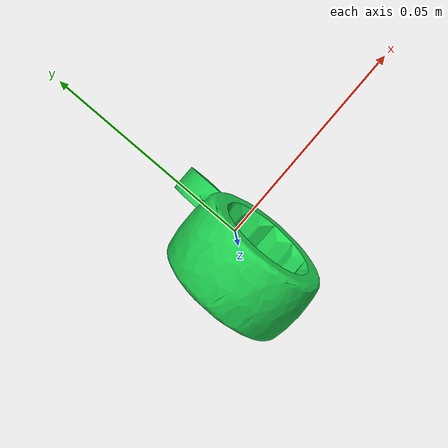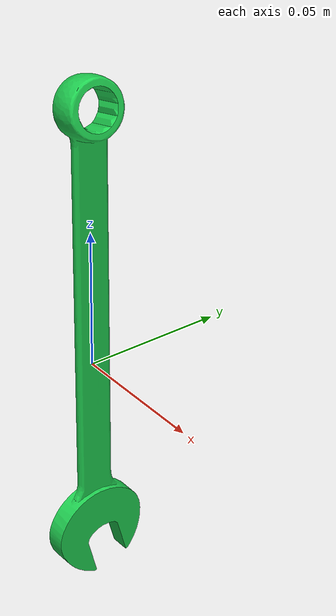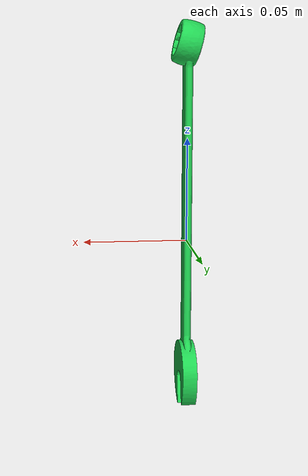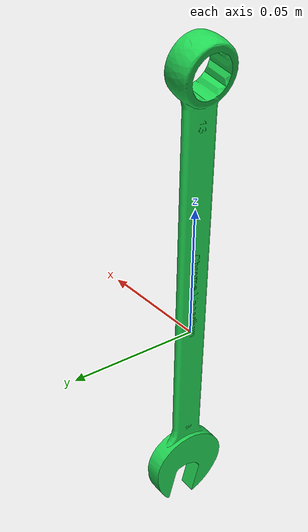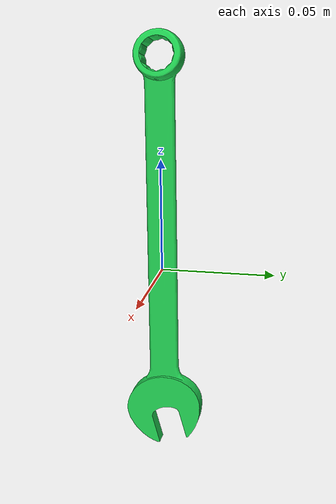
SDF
<?xml version="1.0"?>
<sdf version="1.7">
  <model name="combination_wrench_13mm_bright">
    <pose>0 0 0 0 0 0</pose>
    <static>false</static>
    <link name="link">
      <!-- link frame = tool CoM; Z = long axis (+ toward tool end), X = forward, Y = Z x X -->
      <inertial>
        <pose>0 0 0 0 0 0</pose>
        <mass>0.099041</mass>
        <inertia>
          <ixx>3.874323e-04</ixx>
          <ixy>1.812173e-21</ixy>
          <ixz>4.396112e-22</ixz>
          <iyy>3.833998e-04</iyy>
          <iyz>-1.723165e-22</iyz>
          <izz>4.774353e-06</izz>
        </inertia>
      </inertial>
      <collision name="collision">
        <geometry>
          <mesh>
            <uri>model://combination_wrench_13mm/meshes/combination_wrench_13mm.dae</uri>
          </mesh>
        </geometry>
      </collision>
      <visual name="visual">
        <geometry>
          <mesh>
            <uri>model://combination_wrench_13mm/meshes/combination_wrench_13mm.dae</uri>
          </mesh>
        </geometry>
        <material>
          <ambient>0.055 0.369 0.143 1.0</ambient>
          <diffuse>0.123 0.820 0.318 1.0</diffuse>
          <specular>0.85 0.85 0.85 1.0</specular>
          <emissive>0 0 0 1.0</emissive>
        </material>
      </visual>
    </link>
  </model>
</sdf>
